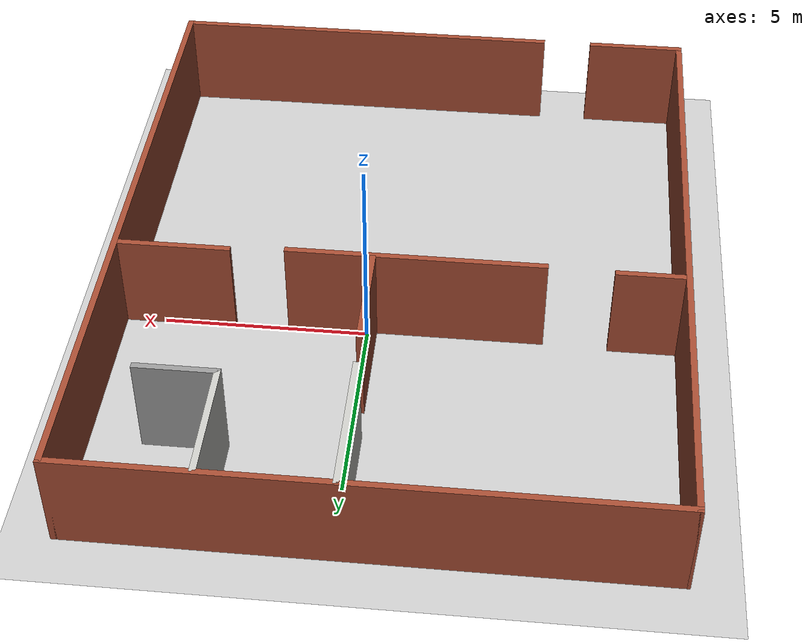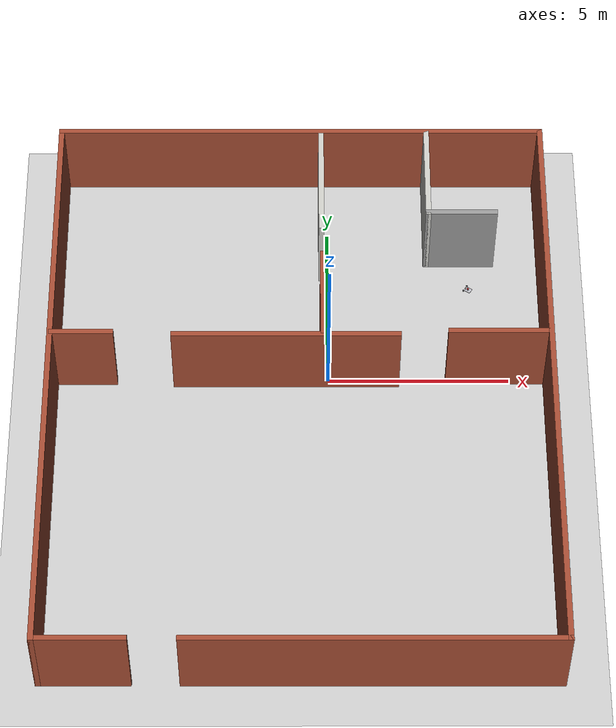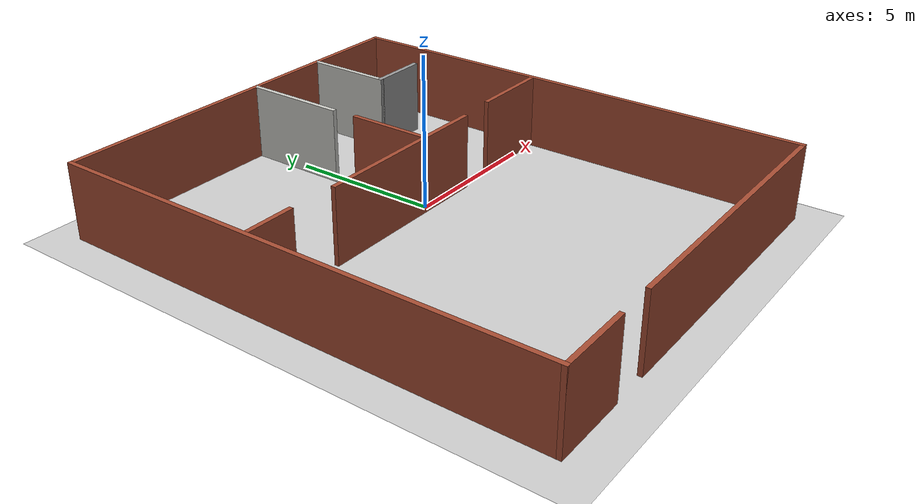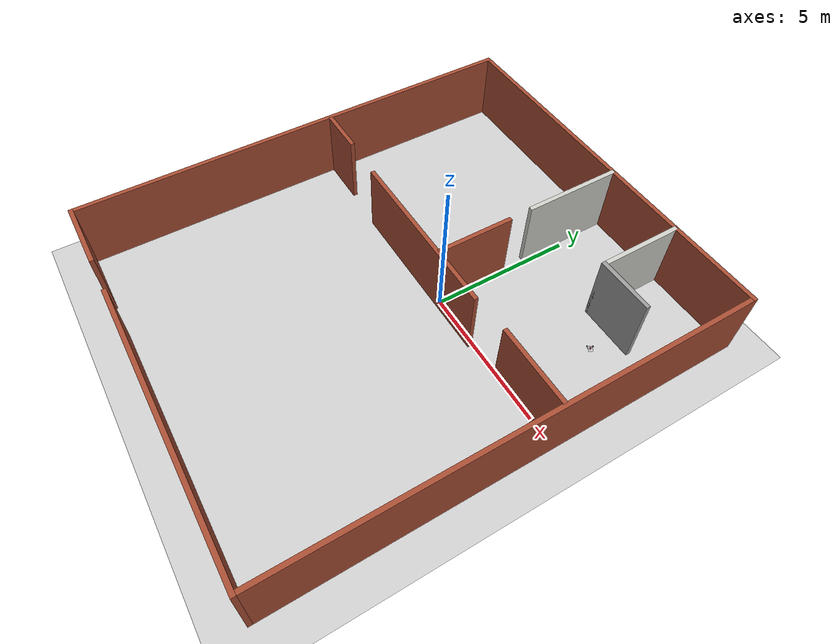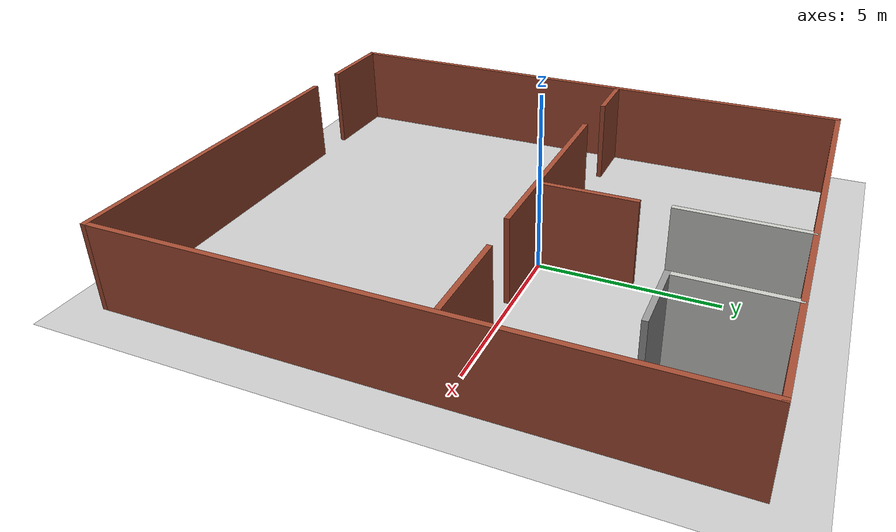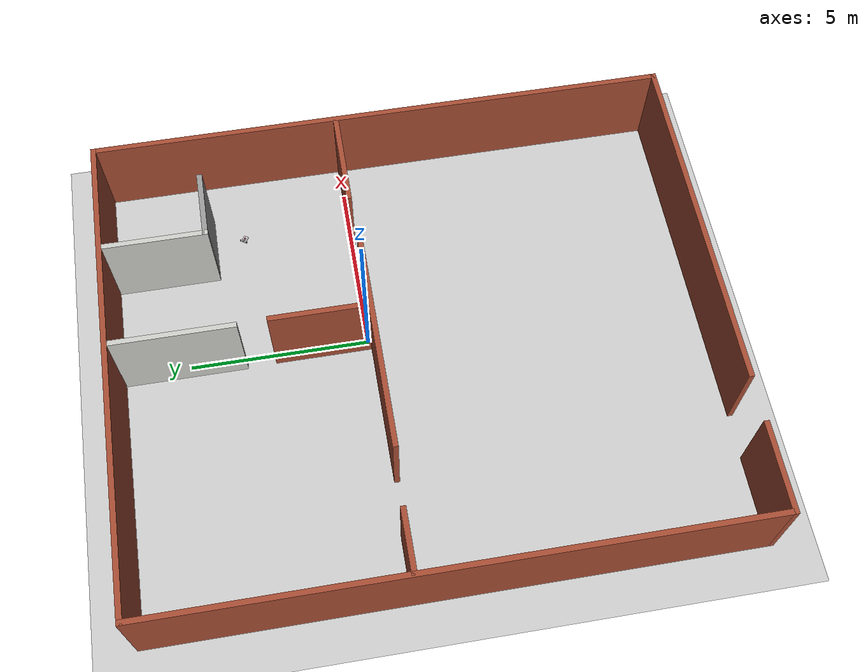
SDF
<sdf version="1.7">
 <world name="default">
  <model name="ground_plane">
   <static>1</static>
   <link name="link">
    <collision name="collision">
     <geometry><plane><normal>0 0 1</normal><size>100 100</size></plane></geometry>
     <surface>
      <contact><collide_bitmask>65535</collide_bitmask></contact>
      <friction><ode><mu>100</mu><mu2>50</mu2></ode></friction>
     </surface>
    </collision>
    <visual name="visual">
     <cast_shadows>0</cast_shadows>
     <geometry><plane><normal>0 0 1</normal><size>100 100</size></plane></geometry>
     <material>
      <script><uri>file://media/materials/scripts/gazebo.material</uri><name>Gazebo/Grey</name></script>
     </material>
    </visual>
   </link>
  </model>
  <model name="TN_Robot_House">
   <pose>-0.76956 -1.27313 0 0 -0 0</pose>
   <link name="Wall_10">
    <collision name="Wall_10_Collision">
     <geometry><box><size>2.5 0.15 2.5</size></box></geometry>
     <pose>0 0 1.25 0 -0 0</pose>
    </collision>
    <visual name="Wall_10_Visual">
     <pose>0 0 1.25 0 -0 0</pose>
     <geometry><box><size>2.5 0.15 2.5</size></box></geometry>
     <material>
      <script><uri>file://media/materials/scripts/gazebo.material</uri><name>Gazebo/Bricks</name></script>
      <ambient>1 1 1 1</ambient>
     </material>
     <meta><layer>0</layer></meta>
    </visual>
    <pose>-5.625 -8.175 0 0 -0 0</pose>
   </link>
   <link name="Wall_12">
    <collision name="Wall_12_Collision">
     <geometry><box><size>10 0.15 2.5</size></box></geometry>
     <pose>0 0 1.25 0 -0 0</pose>
    </collision>
    <visual name="Wall_12_Visual">
     <pose>0 0 1.25 0 -0 0</pose>
     <geometry><box><size>10 0.15 2.5</size></box></geometry>
     <material>
      <script><uri>file://media/materials/scripts/gazebo.material</uri><name>Gazebo/Bricks</name></script>
      <ambient>1 1 1 1</ambient>
     </material>
     <meta><layer>0</layer></meta>
    </visual>
    <pose>1.875 -8.175 0 0 -0 3.14159</pose>
   </link>
   <link name="Wall_14">
    <collision name="Wall_14_Collision">
     <geometry><box><size>1.75 0.15 2.5</size></box></geometry>
     <pose>0 0 1.25 0 -0 0</pose>
    </collision>
    <visual name="Wall_14_Visual">
     <pose>0 0 1.25 0 -0 0</pose>
     <geometry><box><size>1.75 0.15 2.5</size></box></geometry>
     <material>
      <script><uri>file://media/materials/scripts/gazebo.material</uri><name>Gazebo/Bricks</name></script>
      <ambient>1 1 1 1</ambient>
     </material>
     <meta><layer>0</layer></meta>
    </visual>
    <pose>-5.95435 1.21128 0 0 -0 0</pose>
   </link>
   <link name="Wall_16">
    <collision name="Wall_16_Collision">
     <geometry><box><size>6.25 0.15 2.5</size></box></geometry>
     <pose>0 0 1.25 0 -0 0</pose>
    </collision>
    <visual name="Wall_16_Visual">
     <pose>0 0 1.25 0 -0 0</pose>
     <geometry><box><size>6.25 0.15 2.5</size></box></geometry>
     <material>
      <script><uri>file://media/materials/scripts/gazebo.material</uri><name>Gazebo/Bricks</name></script>
      <ambient>1 1 1 1</ambient>
     </material>
     <meta><layer>0</layer></meta>
    </visual>
    <pose>-0.397549 1.14092 0 0 -0 0</pose>
   </link>
   <link name="Wall_18">
    <collision name="Wall_18_Collision">
     <geometry><box><size>2.75 0.15 2.5</size></box></geometry>
     <pose>0 0 1.25 0 -0 0</pose>
    </collision>
    <visual name="Wall_18_Visual">
     <pose>0 0 1.25 0 -0 0</pose>
     <geometry><box><size>2.75 0.15 2.5</size></box></geometry>
     <material>
      <script><uri>file://media/materials/scripts/gazebo.material</uri><name>Gazebo/Bricks</name></script>
      <ambient>1 1 1 1</ambient>
     </material>
     <meta><layer>0</layer></meta>
    </visual>
    <pose>5.38071 1.24645 0 0 -0 0</pose>
   </link>
   <link name="Wall_22">
    <collision name="Wall_22_Collision">
     <geometry><box><size>3.5 0.15 2.5</size></box></geometry>
     <pose>0 0 1.25 0 -0 0</pose>
    </collision>
    <visual name="Wall_22_Visual">
     <pose>0 0 1.25 0 -0 0</pose>
     <geometry><box><size>3.5 0.15 2.5</size></box></geometry>
     <material>
      <script><uri>file://media/materials/scripts/gazebo.material</uri><name>Gazebo/CeilingTiled</name></script>
      <ambient>1 1 1 1</ambient>
     </material>
     <meta><layer>0</layer></meta>
    </visual>
    <pose>0.578652 6.45667 0 0 -0 -1.5708</pose>
   </link>
   <link name="Wall_24">
    <collision name="Wall_24_Collision">
     <geometry><box><size>2.75 0.15 2.5</size></box></geometry>
     <pose>0 0 1.25 0 -0 0</pose>
    </collision>
    <visual name="Wall_24_Visual">
     <pose>0 0 1.25 0 -0 0</pose>
     <geometry><box><size>2.75 0.15 2.5</size></box></geometry>
     <material>
      <script><uri>file://media/materials/scripts/gazebo.material</uri><name>Gazebo/Bricks</name></script>
      <ambient>1 1 1 1</ambient>
     </material>
     <meta><layer>0</layer></meta>
    </visual>
    <pose>0.61383 2.53986 0 0 -0 -1.5708</pose>
   </link>
   <link name="Wall_26">
    <collision name="Wall_26_Collision">
     <geometry><box><size>3 0.15 2.5</size></box></geometry>
     <pose>0 0 1.25 0 -0 0</pose>
    </collision>
    <visual name="Wall_26_Visual">
     <pose>0 0 1.25 0 -0 0</pose>
     <geometry><box><size>3 0.15 2.5</size></box></geometry>
     <material>
      <script><uri>file://media/materials/scripts/gazebo.material</uri><name>Gazebo/CeilingTiled</name></script>
      <ambient>1 1 1 1</ambient>
     </material>
     <meta><layer>0</layer></meta>
    </visual>
    <pose>3.56885 6.70667 0 0 -0 -1.5708</pose>
   </link>
   <link name="Wall_27">
    <collision name="Wall_27_Collision">
     <geometry><box><size>2 0.15 2.5</size></box></geometry>
     <pose>0 0 1.25 0 -0 0</pose>
    </collision>
    <visual name="Wall_27_Visual">
     <pose>0 0 1.25 0 -0 0</pose>
     <geometry><box><size>2 0.15 2.5</size></box></geometry>
     <material>
      <script><uri>file://media/materials/scripts/gazebo.material</uri><name>Gazebo/Grey</name></script>
      <ambient>1 1 1 1</ambient>
     </material>
     <meta><layer>0</layer></meta>
    </visual>
    <pose>4.49385 5.28167 0 0 -0 0</pose>
   </link>
   <link name="Wall_3">
    <collision name="Wall_3_Collision">
     <geometry><box><size>16.5 0.15 2.5</size></box></geometry>
     <pose>0 0 1.25 0 -0 0</pose>
    </collision>
    <visual name="Wall_3_Visual">
     <pose>0 0 1.25 0 -0 0</pose>
     <geometry><box><size>16.5 0.15 2.5</size></box></geometry>
     <material>
      <script><uri>file://media/materials/scripts/gazebo.material</uri><name>Gazebo/Bricks</name></script>
      <ambient>1 1 1 1</ambient>
     </material>
     <meta><layer>0</layer></meta>
    </visual>
    <pose>-6.8 0 0 0 -0 1.5708</pose>
   </link>
   <link name="Wall_4">
    <collision name="Wall_4_Collision">
     <geometry><box><size>13.75 0.15 2.5</size></box></geometry>
     <pose>0 0 1.25 0 -0 0</pose>
    </collision>
    <visual name="Wall_4_Visual">
     <pose>0 0 1.25 0 -0 0</pose>
     <geometry><box><size>13.75 0.15 2.5</size></box></geometry>
     <material>
      <script><uri>file://media/materials/scripts/gazebo.material</uri><name>Gazebo/Bricks</name></script>
      <ambient>1 1 1 1</ambient>
     </material>
     <meta><layer>0</layer></meta>
    </visual>
    <pose>-0 8.175 0 0 -0 0</pose>
   </link>
   <link name="Wall_5">
    <collision name="Wall_5_Collision">
     <geometry><box><size>16.5 0.15 2.5</size></box></geometry>
     <pose>0 0 1.25 0 -0 0</pose>
    </collision>
    <visual name="Wall_5_Visual">
     <pose>0 0 1.25 0 -0 0</pose>
     <geometry><box><size>16.5 0.15 2.5</size></box></geometry>
     <material>
      <script><uri>file://media/materials/scripts/gazebo.material</uri><name>Gazebo/Bricks</name></script>
      <ambient>1 1 1 1</ambient>
     </material>
     <meta><layer>0</layer></meta>
    </visual>
    <pose>6.8 0 0 0 -0 -1.5708</pose>
   </link>
   <static>1</static>
  </model>
  <model name="navbot006">
   <link name="base_link">
    <inertial>
     <pose>-0.009357 0.000343 0.040458 0 -0 0</pose>
     <mass>0.99451</mass>
     <inertia>
      <ixx>0.00162135</ixx>
      <ixy>2.11352e-05</ixy>
      <ixz>5.41619e-05</ixz>
      <iyy>0.00314209</iyy>
      <iyz>7.48693e-06</iyz>
      <izz>0.00415523</izz>
     </inertia>
    </inertial>
    <collision name="base_link_collision">
     <geometry>
      <mesh>
       <scale>0.001 0.001 0.001</scale>
       <uri>/home/naventn/catkin_ws/src/navbot006_description/meshes/base_link.stl</uri>
      </mesh>
     </geometry>
     <surface><friction><ode><mu>0.2</mu><mu2>0.2</mu2></ode></friction></surface>
    </collision>
    <collision name="base_link_fixed_joint_lump__rasp_pi__1__1_collision_1">
     <geometry>
      <mesh>
       <scale>0.001 0.001 0.001</scale>
       <uri>/home/naventn/catkin_ws/src/navbot006_description/meshes/rasp_pi__1__1.stl</uri>
      </mesh>
     </geometry>
    </collision>
    <collision name="base_link_fixed_joint_lump__lidar_top_1_collision_2">
     <geometry>
      <mesh>
       <scale>0.001 0.001 0.001</scale>
       <uri>/home/naventn/catkin_ws/src/navbot006_description/meshes/lidar_top_1.stl</uri>
      </mesh>
     </geometry>
     <surface><friction><ode><mu>0.2</mu><mu2>0.2</mu2></ode></friction></surface>
    </collision>
    <collision name="base_link_fixed_joint_lump__castor_w_1_collision_3">
     <geometry>
      <mesh>
       <scale>0.001 0.001 0.001</scale>
       <uri>/home/naventn/catkin_ws/src/navbot006_description/meshes/castor_w_1.stl</uri>
      </mesh>
     </geometry>
     <surface><friction><ode><mu>0.2</mu><mu2>0.2</mu2></ode></friction></surface>
    </collision>
    <visual name="base_link_visual">
     <geometry>
      <mesh>
       <scale>0.001 0.001 0.001</scale>
       <uri>/home/naventn/catkin_ws/src/navbot006_description/meshes/base_link.stl</uri>
      </mesh>
     </geometry>
     <material>
      <script><name>Gazebo/Silver</name><uri>file://media/materials/scripts/gazebo.material</uri></script>
     </material>
    </visual>
    <visual name="base_link_fixed_joint_lump__rasp_pi__1__1_visual_1">
     <geometry>
      <mesh>
       <scale>0.001 0.001 0.001</scale>
       <uri>/home/naventn/catkin_ws/src/navbot006_description/meshes/rasp_pi__1__1.stl</uri>
      </mesh>
     </geometry>
    </visual>
    <visual name="base_link_fixed_joint_lump__lidar_top_1_visual_2">
     <geometry>
      <mesh>
       <scale>0.001 0.001 0.001</scale>
       <uri>/home/naventn/catkin_ws/src/navbot006_description/meshes/lidar_top_1.stl</uri>
      </mesh>
     </geometry>
     <material>
      <script><name>Gazebo/Red</name><uri>file://media/materials/scripts/gazebo.material</uri></script>
     </material>
    </visual>
    <visual name="base_link_fixed_joint_lump__castor_w_1_visual_3">
     <geometry>
      <mesh>
       <scale>0.001 0.001 0.001</scale>
       <uri>/home/naventn/catkin_ws/src/navbot006_description/meshes/castor_w_1.stl</uri>
      </mesh>
     </geometry>
     <material>
      <script><name>Gazebo/Gold</name><uri>file://media/materials/scripts/gazebo.material</uri></script>
     </material>
    </visual>
    <sensor name="rplidar_n1" type="gpu_ray">
     <visualize>1</visualize>
     <update_rate>20</update_rate>
     <ray>
      <scan>
       <horizontal>
        <samples>720</samples>
        <resolution>1</resolution>
        <min_angle>-3.142</min_angle>
        <max_angle>3.142</max_angle>
       </horizontal>
       <vertical><samples>1</samples><min_angle>0</min_angle><max_angle>0</max_angle></vertical>
      </scan>
      <range><min>0.1</min><max>30</max><resolution>0.01</resolution></range>
      <noise><type>gaussian</type><mean>0</mean><stddev>0.01</stddev></noise>
     </ray>
     <plugin name="gazebo_ros_head_hokuyo_controller" filename="libgazebo_ros_gpu_laser.so">
      <topicName>/scan</topicName>
      <frameName>lidar_top_1</frameName>
      <robotNamespace>/</robotNamespace>
     </plugin>
     <pose>0 0 0.07 0 -0 0</pose>
    </sensor>
    <self_collide>1</self_collide>
   </link>
   <joint name="left_joint" type="revolute">
    <pose relative_to="base_link">-0.09 0.085 0.03 0 -0 0</pose>
    <parent>base_link</parent>
    <child>left_wheel_1</child>
    <axis>
     <xyz>0 1 0</xyz>
     <limit><lower>-1e+16</lower><upper>1e+16</upper></limit>
     <dynamics><spring_reference>0</spring_reference><spring_stiffness>0</spring_stiffness></dynamics>
    </axis>
   </joint>
   <link name="left_wheel_1">
    <pose relative_to="left_joint">0 0 0 0 -0 0</pose>
    <inertial>
     <pose>-0 0.01 0 0 -0 0</pose>
     <mass>0.00659734</mass>
     <inertia><ixx>2e-06</ixx><ixy>0</ixy><ixz>0</ixz><iyy>3e-06</iyy><iyz>0</iyz><izz>2e-06</izz></inertia>
    </inertial>
    <collision name="left_wheel_1_collision">
     <pose>0.09 -0.085 -0.03 0 -0 0</pose>
     <geometry>
      <mesh>
       <scale>0.001 0.001 0.001</scale>
       <uri>/home/naventn/catkin_ws/src/navbot006_description/meshes/left_wheel_1.stl</uri>
      </mesh>
     </geometry>
     <surface><friction><ode><mu>100</mu><mu2>100</mu2></ode></friction></surface>
    </collision>
    <visual name="left_wheel_1_visual">
     <pose>0.09 -0.085 -0.03 0 -0 0</pose>
     <geometry>
      <mesh>
       <scale>0.001 0.001 0.001</scale>
       <uri>/home/naventn/catkin_ws/src/navbot006_description/meshes/left_wheel_1.stl</uri>
      </mesh>
     </geometry>
     <material>
      <script><name>Gazebo/Black</name><uri>file://media/materials/scripts/gazebo.material</uri></script>
     </material>
    </visual>
    <self_collide>1</self_collide>
   </link>
   <joint name="right_joint" type="revolute">
    <pose relative_to="base_link">-0.09 -0.085 0.03 0 -0 0</pose>
    <parent>base_link</parent>
    <child>right_wheel_1</child>
    <axis>
     <xyz>0 1 0</xyz>
     <limit><lower>-1e+16</lower><upper>1e+16</upper></limit>
     <dynamics><spring_reference>0</spring_reference><spring_stiffness>0</spring_stiffness></dynamics>
    </axis>
   </joint>
   <link name="right_wheel_1">
    <pose relative_to="right_joint">0 0 0 0 -0 0</pose>
    <inertial>
     <pose>-0 -0.01 0 0 -0 0</pose>
     <mass>0.00659734</mass>
     <inertia><ixx>2e-06</ixx><ixy>0</ixy><ixz>0</ixz><iyy>3e-06</iyy><iyz>0</iyz><izz>2e-06</izz></inertia>
    </inertial>
    <collision name="right_wheel_1_collision">
     <pose>0.09 0.085 -0.03 0 -0 0</pose>
     <geometry>
      <mesh>
       <scale>0.001 0.001 0.001</scale>
       <uri>/home/naventn/catkin_ws/src/navbot006_description/meshes/right_wheel_1.stl</uri>
      </mesh>
     </geometry>
     <surface><friction><ode><mu>100</mu><mu2>100</mu2></ode></friction></surface>
    </collision>
    <visual name="right_wheel_1_visual">
     <pose>0.09 0.085 -0.03 0 -0 0</pose>
     <geometry>
      <mesh>
       <scale>0.001 0.001 0.001</scale>
       <uri>/home/naventn/catkin_ws/src/navbot006_description/meshes/right_wheel_1.stl</uri>
      </mesh>
     </geometry>
     <material>
      <script><name>Gazebo/Black</name><uri>file://media/materials/scripts/gazebo.material</uri></script>
     </material>
    </visual>
    <self_collide>1</self_collide>
   </link>
   <plugin name="control" filename="libgazebo_ros_control.so"><robotNamespace>/</robotNamespace></plugin>
   <plugin name="differential_drive_controller" filename="libgazebo_ros_diff_drive.so">
    <updateRate>100</updateRate>
    <leftJoint>left_joint</leftJoint>
    <rightJoint>right_joint</rightJoint>
    <wheelSeparation>0.19</wheelSeparation>
    <wheelDiameter>0.06</wheelDiameter>
    <wheelAcceleration>1.0</wheelAcceleration>
    <wheelTorque>50</wheelTorque>
    <commandTopic>cmd_vel</commandTopic>
    <odometryTopic>odom</odometryTopic>
    <odometryFrame>odom</odometryFrame>
    <robotBaseFrame>base_link</robotBaseFrame>
    <odometrySource>1</odometrySource>
    <publishWheelTF>1</publishWheelTF>
    <publishOdom>1</publishOdom>
    <publishWheelJointState>1</publishWheelJointState>
    <legacyMode>0</legacyMode>
    <robotNamespace>/</robotNamespace>
   </plugin>
   <frame name="Rigid10" attached_to="base_link"><pose>-0.1 0 0.04 0 -0 0</pose></frame>
   <frame name="rasp_pi__1__1" attached_to="Rigid10"/>
   <frame name="Rigid8" attached_to="base_link"><pose>0 0 0.07 0 -0 0</pose></frame>
   <frame name="lidar_top_1" attached_to="Rigid8"/>
   <static>0</static>
   <frame name="Rigid9" attached_to="base_link"><pose>0.1 0 0.02 0 -0 0</pose></frame>
   <frame name="castor_w_1" attached_to="Rigid9"/>
   <pose>3.98772 3.10444 -2.2e-05 -3.6e-05 -0.000275 -0.573177</pose>
  </model>
 </world>
</sdf>
